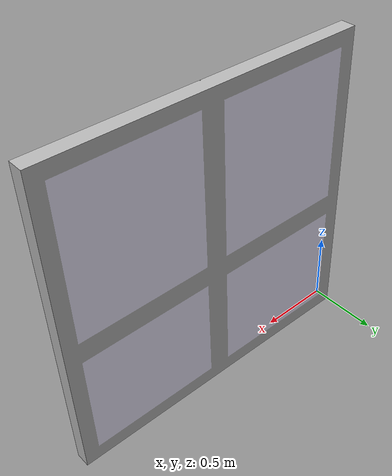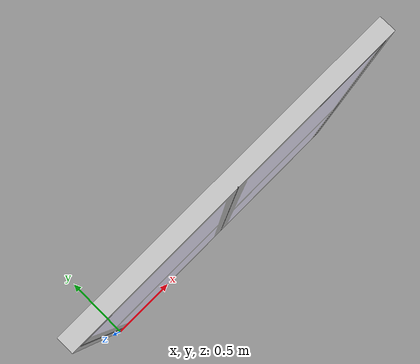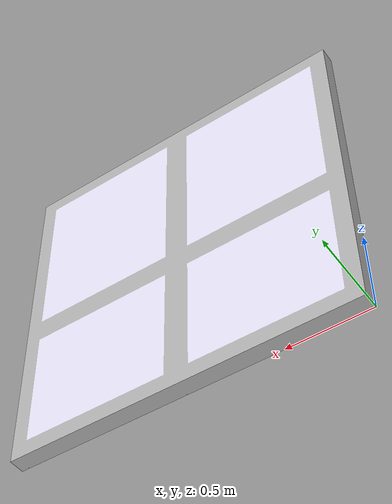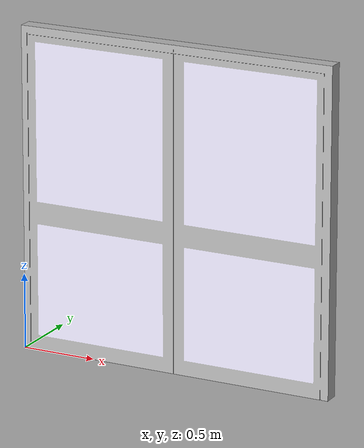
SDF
<?xml version="1.0"?>

<sdf version="1.6">
  <model name='entrance_door'>
    <static>true</static>
    <link name="body">

        <visual name="visual">
          <geometry>
            <mesh><uri>model://models/entrance_door/meshes/entrance_door.dae</uri></mesh>
          </geometry>
        </visual>

        <collision name="collision">
          <geometry>
            <mesh><uri>model://models/entrance_door/meshes/entrance_door.dae</uri></mesh>
          </geometry>
        </collision>

    </link>
  </model>
</sdf>
